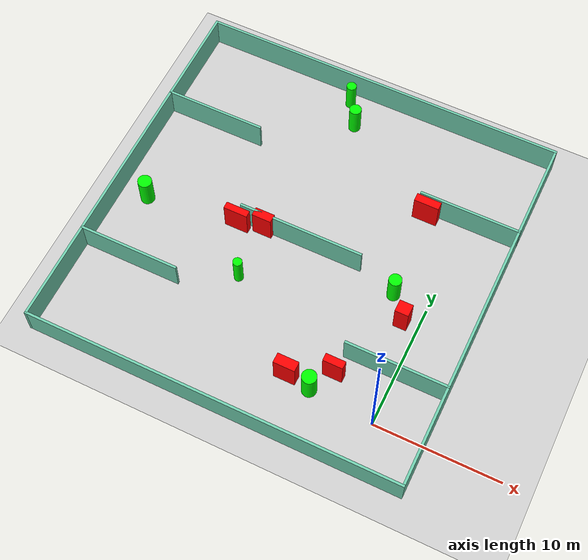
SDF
<sdf version="1.7">
 <world name="default">
  <light name="sun" type="directional">
   <pose>0 0 10 0 -0 0</pose>
   <diffuse>0.8 0.8 0.8 1</diffuse>
   <specular>0.2 0.2 0.2 1</specular>
   <attenuation>
    <range>1000</range>
    <constant>0.9</constant>
    <linear>0.01</linear>
    <quadratic>0.001</quadratic>
   </attenuation>
   <direction>-0.5 0.1 -0.9</direction>
   <spot><inner_angle>0</inner_angle><outer_angle>0</outer_angle><falloff>0</falloff></spot>
  </light>
  <model name="ground_plane">
   <static>1</static>
   <link name="link">
    <collision name="collision">
     <geometry><plane><normal>0 0 1</normal><size>100 100</size></plane></geometry>
     <surface>
      <contact><collide_bitmask>65535</collide_bitmask></contact>
      <friction><ode><mu>100</mu><mu2>50</mu2></ode></friction>
     </surface>
    </collision>
    <visual name="visual">
     <cast_shadows>0</cast_shadows>
     <geometry><plane><normal>0 0 1</normal><size>100 100</size></plane></geometry>
     <material>
      <script><uri>file://media/materials/scripts/gazebo.material</uri><name>Gazebo/Grey</name></script>
     </material>
    </visual>
   </link>
  </model>
  <gravity>0 0 -9.8</gravity>
  <magnetic_field>6e-06 2.3e-05 -4.2e-05</magnetic_field>
  <atmosphere type="adiabatic"/>
  <physics type="ode">
   <max_step_size>0.001</max_step_size>
   <real_time_factor>1</real_time_factor>
   <real_time_update_rate>1000</real_time_update_rate>
  </physics>
  <scene><ambient>0.4 0.4 0.4 1</ambient><background>0.7 0.7 0.7 1</background><shadows>1</shadows></scene>
  <spherical_coordinates>
   <surface_model>EARTH_WGS84</surface_model>
   <latitude_deg>0</latitude_deg>
   <longitude_deg>0</longitude_deg>
   <elevation>0</elevation>
   <heading_deg>0</heading_deg>
  </spherical_coordinates>
  <model name="my_base_walls">
   <link name="Wall_10">
    <collision name="Wall_10_Collision">
     <geometry><box><size>8.2 0.2 2.5</size></box></geometry>
     <pose>0 0 1.25 0 -0 0</pose>
    </collision>
    <visual name="Wall_10_Visual">
     <pose>0 0 1.25 0 -0 0</pose>
     <geometry><box><size>8.2 0.2 2.5</size></box></geometry>
     <material>
      <script><uri>file://media/materials/scripts/gazebo.material</uri><name>Gazebo/Grey</name></script>
      <ambient>0.435294 0.796078 0.67451 1</ambient>
     </material>
     <meta><layer>0</layer></meta>
    </visual>
    <pose>-11 -7 0 0 -0 0</pose>
   </link>
   <link name="Wall_12">
    <collision name="Wall_12_Collision">
     <geometry><box><size>8.2 0.2 2.5</size></box></geometry>
     <pose>0 0 1.25 0 -0 0</pose>
    </collision>
    <visual name="Wall_12_Visual">
     <pose>0 0 1.25 0 -0 0</pose>
     <geometry><box><size>8.2 0.2 2.5</size></box></geometry>
     <material>
      <script><uri>file://media/materials/scripts/gazebo.material</uri><name>Gazebo/Grey</name></script>
      <ambient>0.435294 0.796078 0.67451 1</ambient>
     </material>
     <meta><layer>0</layer></meta>
    </visual>
    <pose>-11 7 0 0 -0 0</pose>
   </link>
   <link name="Wall_14">
    <collision name="Wall_14_Collision">
     <geometry><box><size>8.2 0.2 2.5</size></box></geometry>
     <pose>0 0 1.25 0 -0 0</pose>
    </collision>
    <visual name="Wall_14_Visual">
     <pose>0 0 1.25 0 -0 0</pose>
     <geometry><box><size>8.2 0.2 2.5</size></box></geometry>
     <material>
      <script><uri>file://media/materials/scripts/gazebo.material</uri><name>Gazebo/Grey</name></script>
      <ambient>0.435294 0.796078 0.67451 1</ambient>
     </material>
     <meta><layer>0</layer></meta>
    </visual>
    <pose>11 7 0 0 -0 3.14159</pose>
   </link>
   <link name="Wall_16">
    <collision name="Wall_16_Collision">
     <geometry><box><size>10.2 0.2 2.5</size></box></geometry>
     <pose>0 0 1.25 0 -0 0</pose>
    </collision>
    <visual name="Wall_16_Visual">
     <pose>0 0 1.25 0 -0 0</pose>
     <geometry><box><size>10.2 0.2 2.5</size></box></geometry>
     <material>
      <script><uri>file://media/materials/scripts/gazebo.material</uri><name>Gazebo/Grey</name></script>
      <ambient>0.435294 0.796078 0.67451 1</ambient>
     </material>
     <meta><layer>0</layer></meta>
    </visual>
    <pose>0 0 0 0 -0 3.14159</pose>
   </link>
   <link name="Wall_2">
    <collision name="Wall_2_Collision">
     <geometry><box><size>30.2 0.2 2.5</size></box></geometry>
     <pose>0 0 1.25 0 -0 0</pose>
    </collision>
    <visual name="Wall_2_Visual">
     <pose>0 0 1.25 0 -0 0</pose>
     <geometry><box><size>30.2 0.2 2.5</size></box></geometry>
     <material>
      <script><uri>file://media/materials/scripts/gazebo.material</uri><name>Gazebo/Grey</name></script>
      <ambient>0.435294 0.796078 0.67451 1</ambient>
     </material>
     <meta><layer>0</layer></meta>
    </visual>
    <pose>0 -15 0 0 -0 3.14159</pose>
   </link>
   <link name="Wall_3">
    <collision name="Wall_3_Collision">
     <geometry><box><size>30.2 0.2 2.5</size></box></geometry>
     <pose>0 0 1.25 0 -0 0</pose>
    </collision>
    <visual name="Wall_3_Visual">
     <pose>0 0 1.25 0 -0 0</pose>
     <geometry><box><size>30.2 0.2 2.5</size></box></geometry>
     <material>
      <script><uri>file://media/materials/scripts/gazebo.material</uri><name>Gazebo/Grey</name></script>
      <ambient>0.435294 0.796078 0.67451 1</ambient>
     </material>
     <meta><layer>0</layer></meta>
    </visual>
    <pose>-15 0 0 0 -0 1.5708</pose>
   </link>
   <link name="Wall_4">
    <collision name="Wall_4_Collision">
     <geometry><box><size>30.2 0.2 2.5</size></box></geometry>
     <pose>0 0 1.25 0 -0 0</pose>
    </collision>
    <visual name="Wall_4_Visual">
     <pose>0 0 1.25 0 -0 0</pose>
     <geometry><box><size>30.2 0.2 2.5</size></box></geometry>
     <material>
      <script><uri>file://media/materials/scripts/gazebo.material</uri><name>Gazebo/Grey</name></script>
      <ambient>0.435294 0.796078 0.67451 1</ambient>
     </material>
     <meta><layer>0</layer></meta>
    </visual>
    <pose>0 15 0 0 -0 0</pose>
   </link>
   <link name="Wall_6">
    <collision name="Wall_6_Collision">
     <geometry><box><size>30.2 0.2 2.5</size></box></geometry>
     <pose>0 0 1.25 0 -0 0</pose>
    </collision>
    <visual name="Wall_6_Visual">
     <pose>0 0 1.25 0 -0 0</pose>
     <geometry><box><size>30.2 0.2 2.5</size></box></geometry>
     <material>
      <script><uri>file://media/materials/scripts/gazebo.material</uri><name>Gazebo/Grey</name></script>
      <ambient>0.435294 0.796078 0.67451 1</ambient>
     </material>
     <meta><layer>0</layer></meta>
    </visual>
    <pose>15 0 0 0 -0 1.5708</pose>
   </link>
   <link name="Wall_8">
    <collision name="Wall_8_Collision">
     <geometry><box><size>8.2 0.2 2.5</size></box></geometry>
     <pose>0 0 1.25 0 -0 0</pose>
    </collision>
    <visual name="Wall_8_Visual">
     <pose>0 0 1.25 0 -0 0</pose>
     <geometry><box><size>8.2 0.2 2.5</size></box></geometry>
     <material>
      <script><uri>file://media/materials/scripts/gazebo.material</uri><name>Gazebo/Grey</name></script>
      <ambient>0.435294 0.796078 0.67451 1</ambient>
     </material>
     <meta><layer>0</layer></meta>
    </visual>
    <pose>11 -7 0 0 -0 3.14159</pose>
   </link>
   <static>1</static>
   <pose>-11 11 0 0 -0 0</pose>
  </model>
  <model name="cylinder1">
   <static>1</static>
   <link name="link">
    <inertial>
     <mass>1</mass>
     <inertia><ixx>0.5</ixx><ixy>0</ixy><ixz>0</ixz><iyy>0.5</iyy><iyz>0</iyz><izz>1</izz></inertia>
    </inertial>
    <collision name="collision">
     <geometry><cylinder><radius>0.5809517004854856</radius><length>2.5</length></cylinder></geometry>
    </collision>
    <visual name="visual">
     <geometry><cylinder><radius>0.5809517004854856</radius><length>2.5</length></cylinder></geometry>
     <material>
      <ambient>0 1 0 1</ambient>
      <diffuse>0 1 0 1</diffuse>
      <specular>0.1 0.1 0.1 1</specular>
      <emissive>0 0 0 0</emissive>
     </material>
    </visual>
   </link>
   <pose>-5.200374305109635 0.4170785268179933 1.25 0 0 0</pose>
  </model>
  <model name="cylinder2">
   <static>1</static>
   <link name="link">
    <inertial>
     <mass>1</mass>
     <inertia><ixx>0.5</ixx><ixy>0</ixy><ixz>0</ixz><iyy>0.5</iyy><iyz>0</iyz><izz>1</izz></inertia>
    </inertial>
    <collision name="collision">
     <geometry><cylinder><radius>0.3670834038928694</radius><length>2.5</length></cylinder></geometry>
    </collision>
    <visual name="visual">
     <geometry><cylinder><radius>0.3670834038928694</radius><length>2.5</length></cylinder></geometry>
     <material>
      <ambient>0 1 0 1</ambient>
      <diffuse>0 1 0 1</diffuse>
      <specular>0.1 0.1 0.1 1</specular>
      <emissive>0 0 0 0</emissive>
     </material>
    </visual>
   </link>
   <pose>-14.019567520406717 6.433832854621301 1.25 0 0 0</pose>
  </model>
  <model name="cylinder3">
   <static>1</static>
   <link name="link">
    <inertial>
     <mass>1</mass>
     <inertia><ixx>0.5</ixx><ixy>0</ixy><ixz>0</ixz><iyy>0.5</iyy><iyz>0</iyz><izz>1</izz></inertia>
    </inertial>
    <collision name="collision">
     <geometry><cylinder><radius>0.40347108614205685</radius><length>2.5</length></cylinder></geometry>
    </collision>
    <visual name="visual">
     <geometry><cylinder><radius>0.40347108614205685</radius><length>2.5</length></cylinder></geometry>
     <material>
      <ambient>0 1 0 1</ambient>
      <diffuse>0 1 0 1</diffuse>
      <specular>0.1 0.1 0.1 1</specular>
      <emissive>0 0 0 0</emissive>
     </material>
    </visual>
   </link>
   <pose>-13.087162896007346 24.85351120094227 1.25 0 0 0</pose>
  </model>
  <model name="cylinder4">
   <static>1</static>
   <link name="link">
    <inertial>
     <mass>1</mass>
     <inertia><ixx>0.5</ixx><ixy>0</ixy><ixz>0</ixz><iyy>0.5</iyy><iyz>0</iyz><izz>1</izz></inertia>
    </inertial>
    <collision name="collision">
     <geometry><cylinder><radius>0.4873339008646833</radius><length>2.5</length></cylinder></geometry>
    </collision>
    <visual name="visual">
     <geometry><cylinder><radius>0.4873339008646833</radius><length>2.5</length></cylinder></geometry>
     <material>
      <ambient>0 1 0 1</ambient>
      <diffuse>0 1 0 1</diffuse>
      <specular>0.1 0.1 0.1 1</specular>
      <emissive>0 0 0 0</emissive>
     </material>
    </visual>
   </link>
   <pose>-11.841516546896873 22.880192251694563 1.25 0 0 0</pose>
  </model>
  <model name="cylinder5">
   <static>1</static>
   <link name="link">
    <inertial>
     <mass>1</mass>
     <inertia><ixx>0.5</ixx><ixy>0</ixy><ixz>0</ixz><iyy>0.5</iyy><iyz>0</iyz><izz>1</izz></inertia>
    </inertial>
    <collision name="collision">
     <geometry><cylinder><radius>0.5656493251146741</radius><length>2.5</length></cylinder></geometry>
    </collision>
    <visual name="visual">
     <geometry><cylinder><radius>0.5656493251146741</radius><length>2.5</length></cylinder></geometry>
     <material>
      <ambient>0 1 0 1</ambient>
      <diffuse>0 1 0 1</diffuse>
      <specular>0.1 0.1 0.1 1</specular>
      <emissive>0 0 0 0</emissive>
     </material>
    </visual>
   </link>
   <pose>-23.72747325968388 9.613224182780218 1.25 0 0 0</pose>
  </model>
  <model name="cylinder6">
   <static>1</static>
   <link name="link">
    <inertial>
     <mass>1</mass>
     <inertia><ixx>0.5</ixx><ixy>0</ixy><ixz>0</ixz><iyy>0.5</iyy><iyz>0</iyz><izz>1</izz></inertia>
    </inertial>
    <collision name="collision">
     <geometry><cylinder><radius>0.5142077667665975</radius><length>2.5</length></cylinder></geometry>
    </collision>
    <visual name="visual">
     <geometry><cylinder><radius>0.5142077667665975</radius><length>2.5</length></cylinder></geometry>
     <material>
      <ambient>0 1 0 1</ambient>
      <diffuse>0 1 0 1</diffuse>
      <specular>0.1 0.1 0.1 1</specular>
      <emissive>0 0 0 0</emissive>
     </material>
    </visual>
   </link>
   <pose>-2.7991678436989673 10.164448487547318 1.25 0 0 0</pose>
  </model>
  <model name="box1">
   <static>1</static>
   <link name="link">
    <inertial>
     <mass>1</mass>
     <inertia><ixx>0.083</ixx><ixy>0</ixy><ixz>0</ixz><iyy>0.083</iyy><iyz>0</iyz><izz>0.083</izz></inertia>
    </inertial>
    <collision name="collision">
     <geometry><box><size>2.013642585950085 0.6615595511082517 2.5</size></box></geometry>
    </collision>
    <visual name="visual">
     <geometry><box><size>2.013642585950085 0.6615595511082517 2.5</size></box></geometry>
     <material>
      <ambient>1 0 0 1</ambient>
      <diffuse>1 0 0 1</diffuse>
      <specular>0.1 0.1 0.1 1</specular>
      <emissive>0 0 0 0</emissive>
     </material>
    </visual>
    <sensor name="my_contact" type="contact">
     <contact><collision>box_collision</collision><topic>__default_topic__</topic></contact>
    </sensor>
   </link>
   <pose>-3.2638827853266577 17.45926656350401 1.25 0 0 0</pose>
  </model>
  <model name="box2">
   <static>1</static>
   <link name="link">
    <inertial>
     <mass>1</mass>
     <inertia><ixx>0.083</ixx><ixy>0</ixy><ixz>0</ixz><iyy>0.083</iyy><iyz>0</iyz><izz>0.083</izz></inertia>
    </inertial>
    <collision name="collision">
     <geometry><box><size>1.9505729060935293 0.5597227559691818 2.5</size></box></geometry>
    </collision>
    <visual name="visual">
     <geometry><box><size>1.9505729060935293 0.5597227559691818 2.5</size></box></geometry>
     <material>
      <ambient>1 0 0 1</ambient>
      <diffuse>1 0 0 1</diffuse>
      <specular>0.1 0.1 0.1 1</specular>
      <emissive>0 0 0 0</emissive>
     </material>
    </visual>
    <sensor name="my_contact" type="contact">
     <contact><collision>box_collision</collision><topic>__default_topic__</topic></contact>
    </sensor>
   </link>
   <pose>-16.150922322980044 10.443743282893191 1.25 0 0 0</pose>
  </model>
  <model name="box3">
   <static>1</static>
   <link name="link">
    <inertial>
     <mass>1</mass>
     <inertia><ixx>0.083</ixx><ixy>0</ixy><ixz>0</ixz><iyy>0.083</iyy><iyz>0</iyz><izz>0.083</izz></inertia>
    </inertial>
    <collision name="collision">
     <geometry><box><size>1.5696255955722473 0.7081480455459839 2.5</size></box></geometry>
    </collision>
    <visual name="visual">
     <geometry><box><size>1.5696255955722473 0.7081480455459839 2.5</size></box></geometry>
     <material>
      <ambient>1 0 0 1</ambient>
      <diffuse>1 0 0 1</diffuse>
      <specular>0.1 0.1 0.1 1</specular>
      <emissive>0 0 0 0</emissive>
     </material>
    </visual>
    <sensor name="my_contact" type="contact">
     <contact><collision>box_collision</collision><topic>__default_topic__</topic></contact>
    </sensor>
   </link>
   <pose>-14.110439997651888 10.89133161279488 1.25 0 0 0</pose>
  </model>
  <model name="box4">
   <static>1</static>
   <link name="link">
    <inertial>
     <mass>1</mass>
     <inertia><ixx>0.083</ixx><ixy>0</ixy><ixz>0</ixz><iyy>0.083</iyy><iyz>0</iyz><izz>0.083</izz></inertia>
    </inertial>
    <collision name="collision">
     <geometry><box><size>1.7225570972634767 0.8069345151642693 2.5</size></box></geometry>
    </collision>
    <visual name="visual">
     <geometry><box><size>1.7225570972634767 0.8069345151642693 2.5</size></box></geometry>
     <material>
      <ambient>1 0 0 1</ambient>
      <diffuse>1 0 0 1</diffuse>
      <specular>0.1 0.1 0.1 1</specular>
      <emissive>0 0 0 0</emissive>
     </material>
    </visual>
    <sensor name="my_contact" type="contact">
     <contact><collision>box_collision</collision><topic>__default_topic__</topic></contact>
    </sensor>
   </link>
   <pose>-7.172423425010807 0.7033840762810555 1.25 0 0 0</pose>
  </model>
  <model name="box5">
   <static>1</static>
   <link name="link">
    <inertial>
     <mass>1</mass>
     <inertia><ixx>0.083</ixx><ixy>0</ixy><ixz>0</ixz><iyy>0.083</iyy><iyz>0</iyz><izz>0.083</izz></inertia>
    </inertial>
    <collision name="collision">
     <geometry><box><size>1.087246908525083 0.9901617946039748 2.5</size></box></geometry>
    </collision>
    <visual name="visual">
     <geometry><box><size>1.087246908525083 0.9901617946039748 2.5</size></box></geometry>
     <material>
      <ambient>1 0 0 1</ambient>
      <diffuse>1 0 0 1</diffuse>
      <specular>0.1 0.1 0.1 1</specular>
      <emissive>0 0 0 0</emissive>
     </material>
    </visual>
    <sensor name="my_contact" type="contact">
     <contact><collision>box_collision</collision><topic>__default_topic__</topic></contact>
    </sensor>
   </link>
   <pose>-1.2910449173422975 8.311639404935946 1.25 0 0 0</pose>
  </model>
  <model name="box6">
   <static>1</static>
   <link name="link">
    <inertial>
     <mass>1</mass>
     <inertia><ixx>0.083</ixx><ixy>0</ixy><ixz>0</ixz><iyy>0.083</iyy><iyz>0</iyz><izz>0.083</izz></inertia>
    </inertial>
    <collision name="collision">
     <geometry><box><size>1.5843456064473191 0.6127649650970961 2.5</size></box></geometry>
    </collision>
    <visual name="visual">
     <geometry><box><size>1.5843456064473191 0.6127649650970961 2.5</size></box></geometry>
     <material>
      <ambient>1 0 0 1</ambient>
      <diffuse>1 0 0 1</diffuse>
      <specular>0.1 0.1 0.1 1</specular>
      <emissive>0 0 0 0</emissive>
     </material>
    </visual>
    <sensor name="my_contact" type="contact">
     <contact><collision>box_collision</collision><topic>__default_topic__</topic></contact>
    </sensor>
   </link>
   <pose>-4.108998160830186 2.282754870820468 1.25 0 0 0</pose>
  </model>
 </world>
</sdf>
